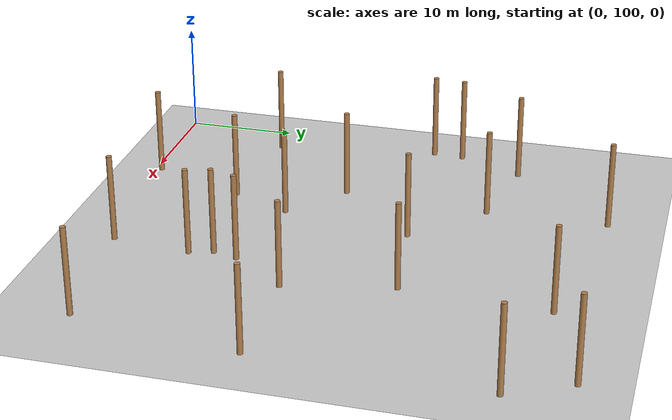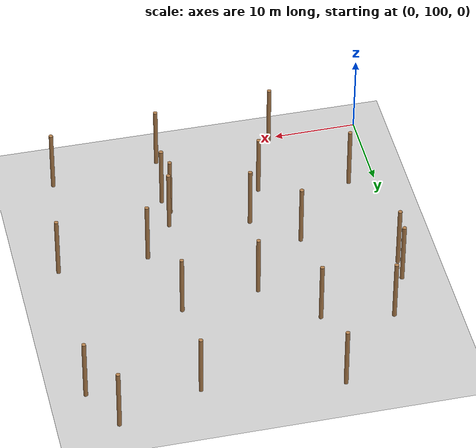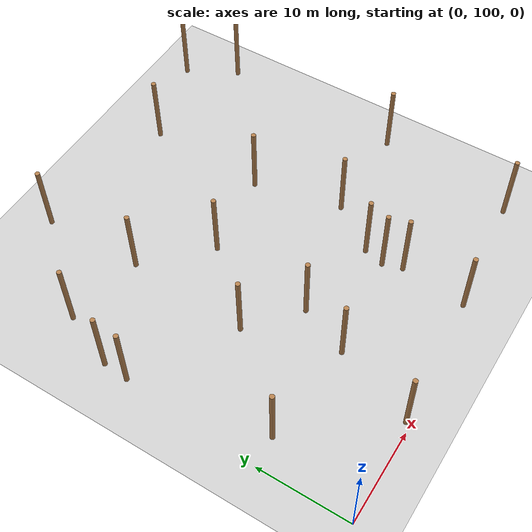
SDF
<sdf version="1.5">
 <world name="padure_tactica">
  <include><uri>model://sun</uri></include>
  <include><uri>model://ground_plane</uri></include>
  <model name="tree_33">
   <static>true</static>
   <pose>26.12 108.66 4.0 0 0 0</pose>
   <link name="link">
    <collision name="collision">
     <geometry><cylinder><radius>0.25</radius><length>8.0</length></cylinder></geometry>
    </collision>
    <visual name="visual">
     <geometry><cylinder><radius>0.25</radius><length>8.0</length></cylinder></geometry>
     <material>
      <script><uri>file://media/materials/scripts/gazebo.material</uri><name>Gazebo/Wood</name></script>
     </material>
    </visual>
   </link>
  </model>
  <model name="tree_47">
   <static>true</static>
   <pose>38.38 102.94 4.0 0 0 0</pose>
   <link name="link">
    <collision name="collision">
     <geometry><cylinder><radius>0.25</radius><length>8.0</length></cylinder></geometry>
    </collision>
    <visual name="visual">
     <geometry><cylinder><radius>0.25</radius><length>8.0</length></cylinder></geometry>
     <material>
      <script><uri>file://media/materials/scripts/gazebo.material</uri><name>Gazebo/Wood</name></script>
     </material>
    </visual>
   </link>
  </model>
  <model name="tree_54">
   <static>true</static>
   <pose>29.75 117.97 4.0 0 0 0</pose>
   <link name="link">
    <collision name="collision">
     <geometry><cylinder><radius>0.25</radius><length>8.0</length></cylinder></geometry>
    </collision>
    <visual name="visual">
     <geometry><cylinder><radius>0.25</radius><length>8.0</length></cylinder></geometry>
     <material>
      <script><uri>file://media/materials/scripts/gazebo.material</uri><name>Gazebo/Wood</name></script>
     </material>
    </visual>
   </link>
  </model>
  <model name="tree_60">
   <static>true</static>
   <pose>41.17 138.60 4.0 0 0 0</pose>
   <link name="link">
    <collision name="collision">
     <geometry><cylinder><radius>0.25</radius><length>8.0</length></cylinder></geometry>
    </collision>
    <visual name="visual">
     <geometry><cylinder><radius>0.25</radius><length>8.0</length></cylinder></geometry>
     <material>
      <script><uri>file://media/materials/scripts/gazebo.material</uri><name>Gazebo/Wood</name></script>
     </material>
    </visual>
   </link>
  </model>
  <model name="tree_90">
   <static>true</static>
   <pose>25.51 110.76 4.0 0 0 0</pose>
   <link name="link">
    <collision name="collision">
     <geometry><cylinder><radius>0.25</radius><length>8.0</length></cylinder></geometry>
    </collision>
    <visual name="visual">
     <geometry><cylinder><radius>0.25</radius><length>8.0</length></cylinder></geometry>
     <material>
      <script><uri>file://media/materials/scripts/gazebo.material</uri><name>Gazebo/Wood</name></script>
     </material>
    </visual>
   </link>
  </model>
  <model name="tree_104">
   <static>true</static>
   <pose>18.29 126.28 4.0 0 0 0</pose>
   <link name="link">
    <collision name="collision">
     <geometry><cylinder><radius>0.25</radius><length>8.0</length></cylinder></geometry>
    </collision>
    <visual name="visual">
     <geometry><cylinder><radius>0.25</radius><length>8.0</length></cylinder></geometry>
     <material>
      <script><uri>file://media/materials/scripts/gazebo.material</uri><name>Gazebo/Wood</name></script>
     </material>
    </visual>
   </link>
  </model>
  <model name="tree_113">
   <static>true</static>
   <pose>3.78 133.73 4.0 0 0 0</pose>
   <link name="link">
    <collision name="collision">
     <geometry><cylinder><radius>0.25</radius><length>8.0</length></cylinder></geometry>
    </collision>
    <visual name="visual">
     <geometry><cylinder><radius>0.25</radius><length>8.0</length></cylinder></geometry>
     <material>
      <script><uri>file://media/materials/scripts/gazebo.material</uri><name>Gazebo/Wood</name></script>
     </material>
    </visual>
   </link>
  </model>
  <model name="tree_121">
   <static>true</static>
   <pose>3.26 110.19 4.0 0 0 0</pose>
   <link name="link">
    <collision name="collision">
     <geometry><cylinder><radius>0.25</radius><length>8.0</length></cylinder></geometry>
    </collision>
    <visual name="visual">
     <geometry><cylinder><radius>0.25</radius><length>8.0</length></cylinder></geometry>
     <material>
      <script><uri>file://media/materials/scripts/gazebo.material</uri><name>Gazebo/Wood</name></script>
     </material>
    </visual>
   </link>
  </model>
  <model name="tree_432">
   <static>true</static>
   <pose>11.97 143.18 4.0 0 0 0</pose>
   <link name="link">
    <collision name="collision">
     <geometry><cylinder><radius>0.25</radius><length>8.0</length></cylinder></geometry>
    </collision>
    <visual name="visual">
     <geometry><cylinder><radius>0.25</radius><length>8.0</length></cylinder></geometry>
     <material>
      <script><uri>file://media/materials/scripts/gazebo.material</uri><name>Gazebo/Wood</name></script>
     </material>
    </visual>
   </link>
  </model>
  <model name="tree_546">
   <static>true</static>
   <pose>38.35 144.01 4.0 0 0 0</pose>
   <link name="link">
    <collision name="collision">
     <geometry><cylinder><radius>0.25</radius><length>8.0</length></cylinder></geometry>
    </collision>
    <visual name="visual">
     <geometry><cylinder><radius>0.25</radius><length>8.0</length></cylinder></geometry>
     <material>
      <script><uri>file://media/materials/scripts/gazebo.material</uri><name>Gazebo/Wood</name></script>
     </material>
    </visual>
   </link>
  </model>
  <model name="tree_605">
   <static>true</static>
   <pose>11.36 118.93 4.0 0 0 0</pose>
   <link name="link">
    <collision name="collision">
     <geometry><cylinder><radius>0.25</radius><length>8.0</length></cylinder></geometry>
    </collision>
    <visual name="visual">
     <geometry><cylinder><radius>0.25</radius><length>8.0</length></cylinder></geometry>
     <material>
      <script><uri>file://media/materials/scripts/gazebo.material</uri><name>Gazebo/Wood</name></script>
     </material>
    </visual>
   </link>
  </model>
  <model name="tree_698">
   <static>true</static>
   <pose>1.06 125.09 4.0 0 0 0</pose>
   <link name="link">
    <collision name="collision">
     <geometry><cylinder><radius>0.25</radius><length>8.0</length></cylinder></geometry>
    </collision>
    <visual name="visual">
     <geometry><cylinder><radius>0.25</radius><length>8.0</length></cylinder></geometry>
     <material>
      <script><uri>file://media/materials/scripts/gazebo.material</uri><name>Gazebo/Wood</name></script>
     </material>
    </visual>
   </link>
  </model>
  <model name="tree_774">
   <static>true</static>
   <pose>28.28 140.73 4.0 0 0 0</pose>
   <link name="link">
    <collision name="collision">
     <geometry><cylinder><radius>0.25</radius><length>8.0</length></cylinder></geometry>
    </collision>
    <visual name="visual">
     <geometry><cylinder><radius>0.25</radius><length>8.0</length></cylinder></geometry>
     <material>
      <script><uri>file://media/materials/scripts/gazebo.material</uri><name>Gazebo/Wood</name></script>
     </material>
    </visual>
   </link>
  </model>
  <model name="tree_848">
   <static>true</static>
   <pose>40.52 118.09 4.0 0 0 0</pose>
   <link name="link">
    <collision name="collision">
     <geometry><cylinder><radius>0.25</radius><length>8.0</length></cylinder></geometry>
    </collision>
    <visual name="visual">
     <geometry><cylinder><radius>0.25</radius><length>8.0</length></cylinder></geometry>
     <material>
      <script><uri>file://media/materials/scripts/gazebo.material</uri><name>Gazebo/Wood</name></script>
     </material>
    </visual>
   </link>
  </model>
  <model name="tree_878">
   <static>true</static>
   <pose>1.29 127.87 4.0 0 0 0</pose>
   <link name="link">
    <collision name="collision">
     <geometry><cylinder><radius>0.25</radius><length>8.0</length></cylinder></geometry>
    </collision>
    <visual name="visual">
     <geometry><cylinder><radius>0.25</radius><length>8.0</length></cylinder></geometry>
     <material>
      <script><uri>file://media/materials/scripts/gazebo.material</uri><name>Gazebo/Wood</name></script>
     </material>
    </visual>
   </link>
  </model>
  <model name="tree_903">
   <static>true</static>
   <pose>16.56 114.54 4.0 0 0 0</pose>
   <link name="link">
    <collision name="collision">
     <geometry><cylinder><radius>0.25</radius><length>8.0</length></cylinder></geometry>
    </collision>
    <visual name="visual">
     <geometry><cylinder><radius>0.25</radius><length>8.0</length></cylinder></geometry>
     <material>
      <script><uri>file://media/materials/scripts/gazebo.material</uri><name>Gazebo/Wood</name></script>
     </material>
    </visual>
   </link>
  </model>
  <model name="tree_927">
   <static>true</static>
   <pose>12.19 132.26 4.0 0 0 0</pose>
   <link name="link">
    <collision name="collision">
     <geometry><cylinder><radius>0.25</radius><length>8.0</length></cylinder></geometry>
    </collision>
    <visual name="visual">
     <geometry><cylinder><radius>0.25</radius><length>8.0</length></cylinder></geometry>
     <material>
      <script><uri>file://media/materials/scripts/gazebo.material</uri><name>Gazebo/Wood</name></script>
     </material>
    </visual>
   </link>
  </model>
  <model name="tree_958">
   <static>true</static>
   <pose>14.29 109.16 4.0 0 0 0</pose>
   <link name="link">
    <collision name="collision">
     <geometry><cylinder><radius>0.25</radius><length>8.0</length></cylinder></geometry>
    </collision>
    <visual name="visual">
     <geometry><cylinder><radius>0.25</radius><length>8.0</length></cylinder></geometry>
     <material>
      <script><uri>file://media/materials/scripts/gazebo.material</uri><name>Gazebo/Wood</name></script>
     </material>
    </visual>
   </link>
  </model>
  <model name="tree_1053">
   <static>true</static>
   <pose>27.65 127.59 4.0 0 0 0</pose>
   <link name="link">
    <collision name="collision">
     <geometry><cylinder><radius>0.25</radius><length>8.0</length></cylinder></geometry>
    </collision>
    <visual name="visual">
     <geometry><cylinder><radius>0.25</radius><length>8.0</length></cylinder></geometry>
     <material>
      <script><uri>file://media/materials/scripts/gazebo.material</uri><name>Gazebo/Wood</name></script>
     </material>
    </visual>
   </link>
  </model>
  <model name="tree_1072">
   <static>true</static>
   <pose>10.97 100.51 4.0 0 0 0</pose>
   <link name="link">
    <collision name="collision">
     <geometry><cylinder><radius>0.25</radius><length>8.0</length></cylinder></geometry>
    </collision>
    <visual name="visual">
     <geometry><cylinder><radius>0.25</radius><length>8.0</length></cylinder></geometry>
     <material>
      <script><uri>file://media/materials/scripts/gazebo.material</uri><name>Gazebo/Wood</name></script>
     </material>
    </visual>
   </link>
  </model>
  <model name="tree_1114">
   <static>true</static>
   <pose>26.12 113.00 4.0 0 0 0</pose>
   <link name="link">
    <collision name="collision">
     <geometry><cylinder><radius>0.25</radius><length>8.0</length></cylinder></geometry>
    </collision>
    <visual name="visual">
     <geometry><cylinder><radius>0.25</radius><length>8.0</length></cylinder></geometry>
     <material>
      <script><uri>file://media/materials/scripts/gazebo.material</uri><name>Gazebo/Wood</name></script>
     </material>
    </visual>
   </link>
  </model>
  <model name="tree_1148">
   <static>true</static>
   <pose>25.32 101.48 4.0 0 0 0</pose>
   <link name="link">
    <collision name="collision">
     <geometry><cylinder><radius>0.25</radius><length>8.0</length></cylinder></geometry>
    </collision>
    <visual name="visual">
     <geometry><cylinder><radius>0.25</radius><length>8.0</length></cylinder></geometry>
     <material>
      <script><uri>file://media/materials/scripts/gazebo.material</uri><name>Gazebo/Wood</name></script>
     </material>
    </visual>
   </link>
  </model>
 </world>
</sdf>
